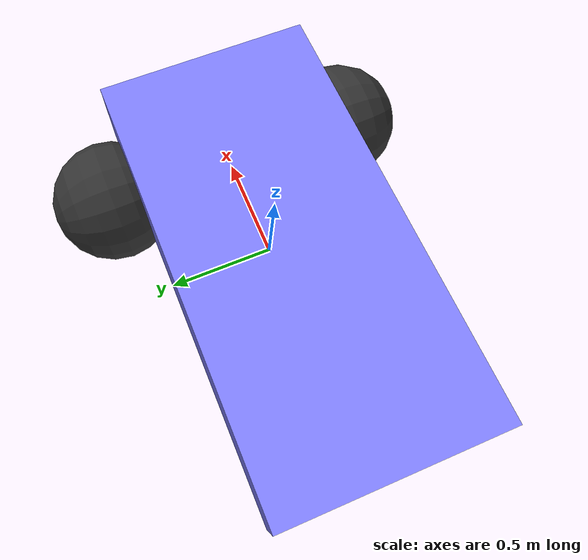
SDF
<?xml version="1.0" ?>
<sdf version="1.6">
  <model name="prius_hybrid_sensors">
    <include>
      <uri>/home/developer/ros2_ws/src/simple_example/models/vehicle/prius/model.sdf</uri>
    </include>

    <joint name="sensor_joint" type="fixed">
      <parent>prius_hybrid::chassis</parent>
      <child>sensors</child>
    </joint>

    <link name="sensors">
      <sensor name='back_camera_sensor' type='camera'>
        <update_rate>30</update_rate>
        <camera name='back_camera'>
          <horizontal_fov>1.39626</horizontal_fov>
          <image>
            <width>800</width>
            <height>800</height>
            <format>R8G8B8</format>
          </image>
          <clip>
            <near>0.02</near>
            <far>300</far>
          </clip>
          <noise>
            <type>gaussian</type>
            <mean>0</mean>
            <stddev>0.007</stddev>
          </noise>
        </camera>
        <pose frame=''>0 1.45 1.4 0 0.05 1.5707</pose>
      </sensor>
      <sensor name='back_left_far_sonar_sensor' type='ray'>
        <ray>
          <scan>
            <horizontal>
              <samples>1</samples>
              <resolution>1</resolution>
              <min_angle>0</min_angle>
              <max_angle>0</max_angle>
            </horizontal>
            <vertical>
              <samples>1</samples>
              <min_angle>0</min_angle>
              <max_angle>0</max_angle>
            </vertical>
          </scan>
          <range>
            <min>0.2</min>
            <max>5</max>
            <resolution>0.1</resolution>
          </range>
        </ray>
        <always_on>0</always_on>
        <update_rate>5</update_rate>
        <pose frame=''>0.7 2.4 0.5 0 -0 1.5707</pose>
      </sensor>
      <sensor name='back_left_middle_sonar_sensor' type='ray'>
        <ray>
          <scan>
            <horizontal>
              <samples>1</samples>
              <resolution>1</resolution>
              <min_angle>0</min_angle>
              <max_angle>0</max_angle>
            </horizontal>
            <vertical>
              <samples>1</samples>
              <min_angle>0</min_angle>
              <max_angle>0</max_angle>
            </vertical>
          </scan>
          <range>
            <min>0.2</min>
            <max>5</max>
            <resolution>0.1</resolution>
          </range>
        </ray>
        <always_on>0</always_on>
        <update_rate>5</update_rate>
        <visualize>1</visualize>
        <pose frame=''>0.24 2.4 0.5 0 -0 1.5707</pose>
      </sensor>
      <sensor name='back_right_far_sonar_sensor' type='ray'>
        <ray>
          <scan>
            <horizontal>
              <samples>1</samples>
              <resolution>1</resolution>
              <min_angle>0</min_angle>
              <max_angle>0</max_angle>
            </horizontal>
            <vertical>
              <samples>1</samples>
              <min_angle>0</min_angle>
              <max_angle>0</max_angle>
            </vertical>
          </scan>
          <range>
            <min>0.2</min>
            <max>5</max>
            <resolution>0.1</resolution>
          </range>
        </ray>
        <always_on>0</always_on>
        <update_rate>5</update_rate>
        <visualize>1</visualize>
        <pose frame=''>-0.7 2.4 0.5 0 -0 1.5707</pose>
      </sensor>
      <sensor name='back_right_middle_sonar_sensor' type='ray'>
        <ray>
          <scan>
            <horizontal>
              <samples>1</samples>
              <resolution>1</resolution>
              <min_angle>0</min_angle>
              <max_angle>0</max_angle>
            </horizontal>
            <vertical>
              <samples>1</samples>
              <min_angle>0</min_angle>
              <max_angle>0</max_angle>
            </vertical>
          </scan>
          <range>
            <min>0.2</min>
            <max>5</max>
            <resolution>0.1</resolution>
          </range>
        </ray>
        <always_on>0</always_on>
        <update_rate>5</update_rate>
        <visualize>1</visualize>
        <pose frame=''>-0.24 2.4 0.5 0 -0 1.5707</pose>
      </sensor>
      <sensor name='center_laser_sensor' type='gpu_ray'>
        <ray>
          <scan>
            <horizontal>
              <samples>512</samples>
              <resolution>1</resolution>
              <min_angle>-3.14</min_angle>
              <max_angle>3.14</max_angle>
            </horizontal>
            <vertical>
              <samples>16</samples>
              <resolution>1</resolution>
              <max_angle>-0.1</max_angle>
              <min_angle>-0.35</min_angle>
            </vertical>
          </scan>
          <range>
            <min>0.2</min>
            <max>30</max>
            <resolution>0.01</resolution>
          </range>
        </ray>
        <always_on>1</always_on>
        <update_rate>30</update_rate>
        <pose frame=''>0 0.4 2.0 0 0 -1.5707</pose>
      </sensor>
      <sensor name='front_camera_sensor' type='camera'>
        <update_rate>30</update_rate>
        <camera name='front_camera'>
          <horizontal_fov>1.39626</horizontal_fov>
          <image>
            <width>800</width>
            <height>800</height>
            <format>R8G8B8</format>
          </image>
          <clip>
            <near>0.02</near>
            <far>300</far>
          </clip>
          <noise>
            <type>gaussian</type>
            <mean>0</mean>
            <stddev>0.007</stddev>
          </noise>
        </camera>
        <pose frame=''>0 -0.4 1.4 0 0.05 -1.5707</pose>
      </sensor>
      <sensor name='front_left_far_sonar_sensor' type='ray'>
        <ray>
          <scan>
            <horizontal>
              <samples>1</samples>
              <resolution>1</resolution>
              <min_angle>0</min_angle>
              <max_angle>0</max_angle>
            </horizontal>
            <vertical>
              <samples>1</samples>
              <min_angle>0</min_angle>
              <max_angle>0</max_angle>
            </vertical>
          </scan>
          <range>
            <min>0.2</min>
            <max>5</max>
            <resolution>0.1</resolution>
          </range>
        </ray>
        <always_on>0</always_on>
        <update_rate>5</update_rate>
        <visualize>1</visualize>
        <pose frame=''>0.7 -2.1 0.5 0 0 -1.5707</pose>
      </sensor>
      <sensor name='front_left_laser_sensor' type='ray'>
        <ray>
          <scan>
            <horizontal>
              <samples>640</samples>
              <resolution>1</resolution>
              <min_angle>-2.26889</min_angle>
              <max_angle>2.2689</max_angle>
            </horizontal>
            <vertical>
              <samples>1</samples>
              <min_angle>0</min_angle>
              <max_angle>0</max_angle>
            </vertical>
          </scan>
          <range>
            <min>0.2</min>
            <max>30</max>
            <resolution>0.01</resolution>
          </range>
        </ray>
        <always_on>1</always_on>
        <update_rate>30</update_rate>
        <visualize>1</visualize>
        <pose frame=''>1 -2.3 0.8 0 0.05 0</pose>
      </sensor>
      <sensor name='front_left_middle_sonar_sensor' type='ray'>
        <ray>
          <scan>
            <horizontal>
              <samples>1</samples>
              <resolution>1</resolution>
              <min_angle>0</min_angle>
              <max_angle>0</max_angle>
            </horizontal>
            <vertical>
              <samples>1</samples>
              <min_angle>0</min_angle>
              <max_angle>0</max_angle>
            </vertical>
          </scan>
          <range>
            <min>0.2</min>
            <max>5</max>
            <resolution>0.1</resolution>
          </range>
        </ray>
        <always_on>0</always_on>
        <update_rate>5</update_rate>
        <visualize>1</visualize>
        <pose frame=''>0.24 -2.3 0.5 0 0 -1.5707</pose>
      </sensor>
      <sensor name='front_right_far_sonar_sensor' type='ray'>
        <ray>
          <scan>
            <horizontal>
              <samples>1</samples>
              <resolution>1</resolution>
              <min_angle>0</min_angle>
              <max_angle>0</max_angle>
            </horizontal>
            <vertical>
              <samples>1</samples>
              <min_angle>0</min_angle>
              <max_angle>0</max_angle>
            </vertical>
          </scan>
          <range>
            <min>0.2</min>
            <max>5</max>
            <resolution>0.1</resolution>
          </range>
        </ray>
        <always_on>0</always_on>
        <update_rate>5</update_rate>
        <visualize>1</visualize>
        <pose frame=''>-0.7 -2.1 0.5 0 0 -1.5707</pose>
      </sensor>
      <sensor name='front_right_laser_sensor' type='ray'>
        <ray>
          <scan>
            <horizontal>
              <samples>640</samples>
              <resolution>1</resolution>
              <min_angle>-2.26889</min_angle>
              <max_angle>2.2689</max_angle>
            </horizontal>
            <vertical>
              <samples>1</samples>
              <min_angle>0</min_angle>
              <max_angle>0</max_angle>
            </vertical>
          </scan>
          <range>
            <min>0.2</min>
            <max>30</max>
            <resolution>0.01</resolution>
          </range>
        </ray>
        <always_on>1</always_on>
        <update_rate>30</update_rate>
        <visualize>1</visualize>
        <pose frame=''>-1 -2.3 0.8 -0 0.05 3.14</pose>
      </sensor>
      <sensor name='front_right_middle_sonar_sensor' type='ray'>
        <ray>
          <scan>
            <horizontal>
              <samples>1</samples>
              <resolution>1</resolution>
              <min_angle>0</min_angle>
              <max_angle>0</max_angle>
            </horizontal>
            <vertical>
              <samples>1</samples>
              <min_angle>0</min_angle>
              <max_angle>0</max_angle>
            </vertical>
          </scan>
          <range>
            <min>0.2</min>
            <max>5</max>
            <resolution>0.1</resolution>
          </range>
        </ray>
        <always_on>0</always_on>
        <update_rate>5</update_rate>
        <visualize>1</visualize>
        <pose frame=''>-0.24 -2.3 0.5 0 0 -1.5707</pose>
      </sensor>
      <sensor name='left_camera_sensor' type='camera'>
        <update_rate>30</update_rate>
        <camera name='left_camera'>
          <horizontal_fov>1.39626</horizontal_fov>
          <image>
            <width>800</width>
            <height>800</height>
            <format>R8G8B8</format>
          </image>
          <clip>
            <near>0.02</near>
            <far>300</far>
          </clip>
          <noise>
            <type>gaussian</type>
            <mean>0</mean>
            <stddev>0.007</stddev>
          </noise>
        </camera>
        <pose frame=''>1 -0.7 1 0 0.05 1</pose>
      </sensor>
      <sensor name='right_camera_sensor' type='camera'>
        <update_rate>30</update_rate>
        <camera name='right_camera'>
          <horizontal_fov>1.39626</horizontal_fov>
          <image>
            <width>800</width>
            <height>800</height>
            <format>R8G8B8</format>
          </image>
          <clip>
            <near>0.02</near>
            <far>300</far>
          </clip>
          <noise>
            <type>gaussian</type>
            <mean>0</mean>
            <stddev>0.007</stddev>
          </noise>
        </camera>
        <pose frame=''>-1 -0.7 1 0 0.05 2.1416</pose>
      </sensor>
      <sensor name="gps_sensor" type="gps">
        <pose>0 0 0  0 0 0</pose>
        <update_rate>10.0</update_rate>
        <always_on>true</always_on>
        <gps>
          <position_sensing>
            <horizontal>
              <noise type="gaussian_quantized">
                <mean>0</mean>
                <stddev>1</stddev>
                <bias_mean>3</bias_mean>
                <bias_stddev>1</bias_stddev>
                <precision>0.5</precision>
              </noise>
            </horizontal>
            <vertical>
              <noise type="gaussian_quantized">
                <mean>0</mean>
                <stddev>1</stddev>
                <bias_mean>3</bias_mean>
                <bias_stddev>1</bias_stddev>
                <precision>1.0</precision>
              </noise>
            </vertical>
          </position_sensing>
          <velocity_sensing>
            <horizontal>
              <noise type="gaussian_quantized">
                <mean>0</mean>
                <stddev>0.1</stddev>
                <bias_mean>0.1</bias_mean>
                <bias_stddev>0.1</bias_stddev>
                <precision>0.1</precision>
              </noise>
            </horizontal>
            <vertical>
              <noise type="gaussian_quantized">
                <mean>0</mean>
                <stddev>0.2</stddev>
                <bias_mean>0.2</bias_mean>
                <bias_stddev>0.2</bias_stddev>
                <precision>0.2</precision>
              </noise>
            </vertical>
          </velocity_sensing>
        </gps>
      </sensor>
      <sensor name="imu_sensor" type="imu">
        <pose>0 0 0 0 0 0</pose>
        <always_on>1</always_on>
        <update_rate>1000.0</update_rate>
      </sensor>
    </link>
        <plugin
        filename="gz-sim-odometry-publisher-system"
        name="gz::sim::systems::OdometryPublisher">

        <!-- Odometry frame parameters -->
        <odom_frame>robot/odom</odom_frame>
        <robot_base_frame>robot/base_footprint</robot_base_frame>

        <!-- Topic configurations -->
        <odom_publish_frequency>1</odom_publish_frequency>
        <odom_topic>/robot/odometry</odom_topic>
        <tf_topic>/robot/pose</tf_topic>

        <!-- Dimensionality -->
        <dimensions>3</dimensions>

        <!-- Offsets -->
        <xyz_offset>0 0 0</xyz_offset>
        <rpy_offset>0 0 0</rpy_offset>

        <!-- Noise -->
        <gaussian_noise>0</gaussian_noise>
          </plugin>
  </model>
</sdf>

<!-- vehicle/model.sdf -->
<sdf version="1.8">
    <model name='vehicle'>
      <link name='chassis'>
        <pose>-0.151427 -0 0.175 0 -0 0</pose>
        <inertial>
          <mass>1.14395</mass>
          <inertia>
            <ixx>0.126164</ixx>
            <ixy>0</ixy>
            <ixz>0</ixz>
            <iyy>0.416519</iyy>
            <iyz>0</iyz>
            <izz>0.481014</izz>
          </inertia>
        </inertial>
        <visual name='visual_chassis'>
          <geometry>
            <box>
              <size>2.01142 1 0.568726</size>
            </box>
          </geometry>
          <material>
            <ambient>0.5 0.5 1.0 1</ambient>
            <diffuse>0.5 0.5 1.0 1</diffuse>
            <specular>0.0 0.0 1.0 1</specular>
          </material>
        </visual>
        <collision name='collision_chassis'>
          <geometry>
            <box>
              <size>2.01142 1 0.568726</size>
            </box>
          </geometry>
        </collision>
      </link>

      <link name='left_wheel'>
        <pose>0.554283 0.625029 -0.025 -1.5707 0 0</pose>
        <inertial>
          <mass>2</mass>
          <inertia>
            <ixx>0.145833</ixx>
            <ixy>0</ixy>
            <ixz>0</ixz>
            <iyy>0.145833</iyy>
            <iyz>0</iyz>
            <izz>0.125</izz>
          </inertia>
        </inertial>
        <visual name='visual_left_wheel'>
          <geometry>
            <sphere>
              <radius>0.3</radius>
            </sphere>
          </geometry>
          <material>
            <ambient>0.2 0.2 0.2 1</ambient>
            <diffuse>0.2 0.2 0.2 1</diffuse>
            <specular>0.2 0.2 0.2 1</specular>
          </material>
        </visual>
        <collision name='collision_left_wheel'>
          <geometry>
            <sphere>
              <radius>0.3</radius>
            </sphere>
          </geometry>
        </collision>
      </link>

      <link name='right_wheel'>
        <pose>0.554282 -0.625029 -0.025 -1.5707 0 0</pose>
        <inertial>
          <mass>2</mass>
          <inertia>
            <ixx>0.145833</ixx>
            <ixy>0</ixy>
            <ixz>0</ixz>
            <iyy>0.145833</iyy>
            <iyz>0</iyz>
            <izz>0.125</izz>
          </inertia>
        </inertial>
        <visual name='visual_right_wheel'>
          <geometry>
            <sphere>
              <radius>0.3</radius>
            </sphere>
          </geometry>
          <material>
            <ambient>0.2 0.2 0.2 1</ambient>
            <diffuse>0.2 0.2 0.2 1</diffuse>
            <specular>0.2 0.2 0.2 1</specular>
          </material>
        </visual>
        <collision name='collision_right_wheel'>
          <geometry>
            <sphere>
              <radius>0.3</radius>
            </sphere>
          </geometry>
        </collision>
      </link>

      <link name='caster'>
        <pose>-0.957138 -0 -0.125 0 -0 0</pose>
        <inertial>
          <mass>1</mass>
          <inertia>
            <ixx>0.1</ixx>
            <ixy>0</ixy>
            <ixz>0</ixz>
            <iyy>0.1</iyy>
            <iyz>0</iyz>
            <izz>0.1</izz>
          </inertia>
        </inertial>
        <visual name='visual_caster'>
          <geometry>
            <sphere>
              <radius>0.2</radius>
            </sphere>
          </geometry>
          <material>
            <ambient>0.2 0.2 0.2 1</ambient>
            <diffuse>0.2 0.2 0.2 1</diffuse>
            <specular>0.2 0.2 0.2 1</specular>
          </material>
        </visual>
        <collision name='collision_caster'>
          <geometry>
            <sphere>
              <radius>0.2</radius>
            </sphere>
          </geometry>
        </collision>
      </link>

      <joint name='left_wheel_joint' type='revolute'>
        <parent>chassis</parent>
        <child>left_wheel</child>
        <axis>
          <xyz>0 0 1</xyz>
          <limit>
            <lower>-1.79769e+308</lower>
            <upper>1.79769e+308</upper>
          </limit>
        </axis>
      </joint>

      <joint name='right_wheel_joint' type='revolute'>
        <parent>chassis</parent>
        <child>right_wheel</child>
        <axis>
          <xyz>0 0 1</xyz>
          <limit>
            <lower>-1.79769e+308</lower>
            <upper>1.79769e+308</upper>
          </limit>
        </axis>
      </joint>

      <joint name='caster_wheel' type='ball'>
        <parent>chassis</parent>
        <child>caster</child>
      </joint>

    </model>
</sdf>
